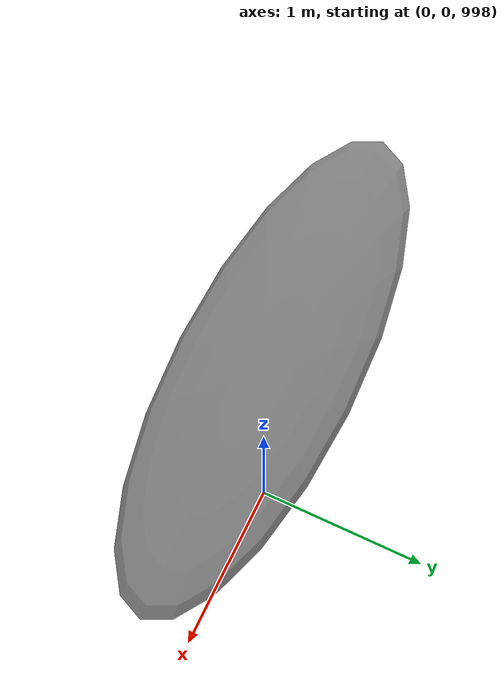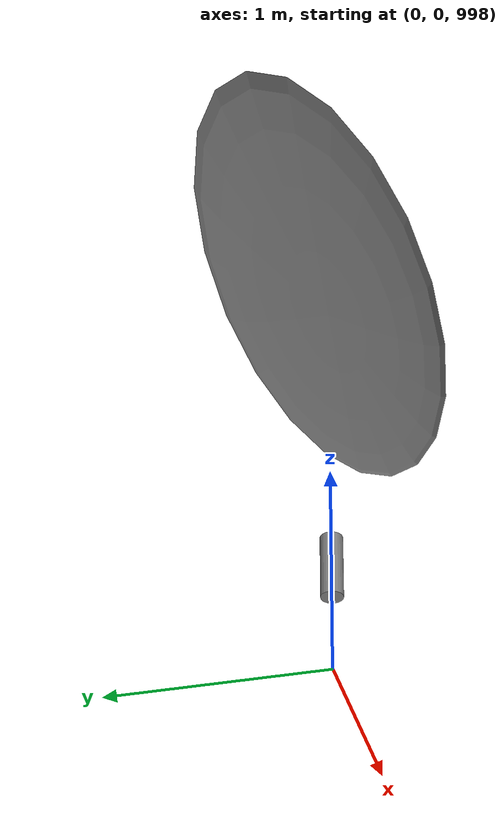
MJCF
<mujoco>
  <!-- Set global air density (1.225 kg/m^3) so MuJoCo calculates basic drag -->
  <option gravity="0 0 -9.81" density="1.225" viscosity="1.8e-5"/>

  <worldbody>
    <!-- The Canopy -->
    <body name="canopy" pos="0 0 1000">
      <freejoint/>
      <!-- fluidshape enables built-in aerodynamic drag based on the geometry -->
      <geom name="canopy_geom" type="ellipsoid" size="1.5 0.5 0.1" mass="0.2" fluidshape="ellipsoid"/>

      <!-- The CanSat Payload -->
      <body name="payload" pos="0 0 -1.5">
        <!-- Ball joint allows pendulum swinging; damping prevents infinite oscillation -->
        <joint name="suspension_lines" type="ball" damping="0.5"/>
        <geom name="cansat_geom" type="cylinder" size="0.05 0.15" mass="1.0"/>
      </body>
    </body>
  </worldbody>
</mujoco>
